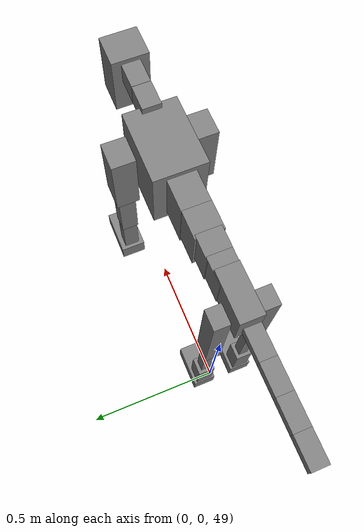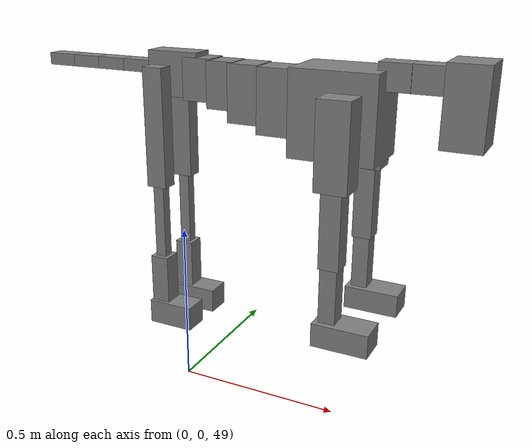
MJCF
<mujoco model="dog">

    <default>
        <joint armature="0.02" stiffness="1" damping="0.2" limited="true"/>
        <geom condim="3" friction="1 0.05 0.05" margin="0.01"/>
        <motor ctrllimited="true" ctrlrange="-1.0 1.0" forcelimited="true" gear="50"/>
    </default>

    <compiler inertiafromgeom="true" angle="radian"/>

    <option timestep="0.016" iterations="50" tolerance="1e-10" solver="Newton" jacobian="dense" cone="pyramidal"/>

    <size nconmax="20000" njmax="60000" nstack="5000000"/>
    <visual>
        <map force="0.1" zfar="30"/>
        <rgba haze="0.15 0.25 0.35 1"/>
        <quality shadowsize="2048"/>
        <global offwidth="800" offheight="800"/>
    </visual>

    <asset>
        <texture type="skybox" builtin="gradient" rgb1="0.3 0.5 0.7" rgb2="0 0 0" width="512" height="512"/>
        <texture name="texplane" type="2d" builtin="checker" rgb1=".2 .3 .4" rgb2=".1 0.15 0.2" width="512" height="512"
                 mark="cross" markrgb=".8 .8 .8"/>
        <texture name="texgeom" type="cube" builtin="flat" mark="cross" width="127" height="1278" rgb1="0.8 0.6 0.4"
                 rgb2="0.8 0.6 0.4" markrgb="1 1 1" random="0.01"/>

        <material name="matplane" reflectance="0.3" texture="texplane" texrepeat="1 1" texuniform="true"/>
        <material name="matgeom" texture="texgeom" texuniform="true" rgba="0.8 0.6 .4 1"/>
    </asset>

    <worldbody>
        <geom name="floor" pos="0 0 0" size="0 0 .25" type="plane" material="matplane" condim="3"/>

        <light directional="false" diffuse=".2 .2 .2" specular="0 0 0" pos="0 0 5" dir="0 0 -1" castshadow="false"/>
        <light mode="targetbodycom" target="torso" directional="false" diffuse=".8 .8 .8" specular="0.3 0.3 0.3"
               pos="0 0 4.0" dir="0 0 -1"/>

        <body name="root" pos="0 0 50">
            <freejoint name="root_1"/>
            <geom type="box" pos="0 0 -0.02" size="0.0774  0.0358  0.063" density="2030"/>

            <body name="spine1" pos="0.054 0 0">
                <joint name="spine1_y" axis="0 1 0" range="0 0.7" limited="true"/>
                <geom type="box" pos="0.02375 0 -0.03" size="0.04375  0.0375  0.05985" density="2030"/>

                <body name="spine2" pos="0.0612 0 0">
                    <joint name="spine2_y" axis="0 1 0" range="-0.15 0.15" limited="true"/>
                    <geom type="box" pos="0.03555  0  -0.04" size="0.04055  0.039  0.06615" density="2030"/>

                    <body name="spine3" pos="0.0730 0 0">
                        <joint name="spine3_y" axis="0 1 0" range="-0.15 0.15" limited="true"/>
                        <geom type="box" pos="0.03555  0  -0.057" size="0.04555  0.0445  0.081" density="2030"/>

                        <body name="spine4" pos="0.0780 0 0">
                            <joint name="spine4_y" axis="0 1 0" range="-0.15 0.15" limited="true"/>
                            <geom type="box" pos="0.05265  0  -0.07" size="0.05265  0.045  0.09135" density="2030"/>

                            <body name="torso" pos="0.1082 0 0">
                                <joint name="torso_y" axis="0 1 0" range="-0.15 0.15" limited="true"/>
                                <geom type="box" pos="0.11925  0  -0.085" size="0.11925  0.085  0.11745"
                                      density="2030"/>

                                <body name="neck1" pos="0.2160  0   0.0180">
                                    <joint name="neck1_y" axis="0 1 0" range="-1.2  -1" limited="true"/>
                                    <geom type="box" pos="0.0423  0  0" size="0.0423  0.03  0.036" density="2325"/>

                                    <body name="neck2" pos="0.0853  0  0">
                                        <joint name="neck2_y" axis="0 1 0" range="0.1  0" limited="true"/>
                                        <geom type="box" pos="0.0423  0  0" size="0.0423  0.03  0.036" density="2325"/>

                                        <body name="head" pos="0.0853  0  0">
                                            <joint name="head_y" axis="0 1 0" range="-0.3  -0.2" limited="true"/>
                                            <geom type="box" pos="0.0531  0  -0.055" size="0.0531  0.06  0.1044"
                                                  density="4030"/>

                                        </body>
                                    </body>
                                </body>

                                <body name="front_shoulder" pos="0.156  0   -0.0480">
                                    <joint name="front_shoulder_y" axis="0 1 0" range="-1 1.5" limited="true"/>
                                    <geom type="box" pos="0 0.13 -0.0910" size="0.0450  0.0385  0.1177" density="1158"/>
                                    <geom type="box" pos="0 -0.13 -0.0910" size="0.0450  0.0385  0.1177"
                                          density="1158"/>

                                    <body name="front_elbow" pos="0  0  -0.1820">
                                        <joint name="front_elbow_y" axis="0 1 0" range="-2 0" limited="true"/>
                                        <geom type="box" pos="0 0.13 -0.1173" size="0.0283  0.0289  0.1173"
                                              density="1081"/>
                                        <geom type="box" pos="0 -0.13 -0.1173" size="0.0283  0.0289  0.1173"
                                              density="1081"/>

                                        <body name="front_wrist" pos="0  0  -0.2346">
                                            <joint name="front_wrist_y" axis="0 1 0" range="-0.2 0" limited="true"/>
                                            <geom type="box" pos="0 0.13 -0.0844" size="0.0237  0.0263  0.0976"
                                                  density="1664"/>
                                            <geom type="box" pos="0 -0.13 -0.0844" size="0.0237  0.0263  0.0976"
                                                  density="1664"/>

                                            <body name="front_finger_end" pos="0  0  -0.1688">
                                                <joint name="front_finger_y" axis="0 1 0" range="-0.4 1"
                                                       limited="true"/>
                                                <geom type="box" pos="0.0433  0.13  -0.0183"
                                                      size="0.0794  0.0433  0.0333" density="1515"/>
                                                <geom type="box" pos="0.0433  -0.13  -0.0183"
                                                      size="0.0794  0.0433  0.0333" density="1515"/>

                                            </body>

                                        </body>
                                    </body>
                                </body>

                            </body>
                        </body>
                    </body>
                </body>
            </body>

            <body name="back_hip" pos="-0.03 0 -0.018">
                <joint name="back_hip_y" axis="0 1 0" range="-1.5 0.3" limited="true"/>
                <geom type="box" pos="0 0.07 -0.1494" size="0.0305  0.0239  0.1722" density="1154"/>
                <geom type="box" pos="0 -0.07 -0.1494" size="0.0305  0.0239  0.1722" density="1154"/>

                <body name="back_knee" pos="0  0  -0.2988">
                    <joint name="back_knee_y" axis="0 1 0" range="0 2.8" limited="true"/>
                    <geom type="box" pos="0 0.07 -0.1261" size="0.0162  0.0159  0.1417" density="1227"/>
                    <geom type="box" pos="0 -0.07 -0.1261" size="0.0162  0.0159  0.1417" density="1227"/>

                    <body name="back_ankle" pos="0  0  -0.2522">
                        <joint name="back_ankle_y" axis="0 1 0" range="-2.2 0" limited="true"/>
                        <geom type="box" pos="0 0.07 -0.0743" size="0.0277  0.0277  0.0855" density="1284"/>
                        <geom type="box" pos="0 -0.07 -0.0743" size="0.0277  0.0277  0.0855" density="1284"/>

                        <body name="back_toe_end" pos="0  0  -0.1485">
                            <joint name="back_toe_y" axis="0 1 0" range="-0.4 1" limited="true"/>
                            <geom type="box" pos="0.0378  0.07  -0.0212" size="0.0693  0.0378  0.0362" density="1515"/>
                            <geom type="box" pos="0.0378  -0.07  -0.0212" size="0.0693  0.0378  0.0362" density="1515"/>

                        </body>
                    </body>
                </body>
            </body>

            <body name="tail1" pos="-0.074 0 -0.006">
                <joint name="tail1_y" axis="0 1 0" range="-0.2 0.2" limited="true"/>
                <geom type="box" pos="-0.0536  0  0" size="0.045  0.025  0.0175" density="1587"/>

                <body name="tail2" pos="-0.09 0 0">
                    <joint name="tail2_y" axis="0 1 0" range="-0.2 0.2" limited="true"/>
                    <geom type="box" pos="-0.0536  0  0" size="0.045  0.025  0.0175" density="1587"/>

                    <body name="tail3" pos="-0.09 0 0">
                        <joint name="tail3_y" axis="0 1 0" range="-0.2 0.2" limited="true"/>
                        <geom type="box" pos="-0.0536  0  0" size="0.045  0.025  0.0175" density="1587"/>

                        <body name="tail4" pos="-0.09 0 0">
                            <joint name="tail4_y" axis="0 1 0" range="-0.2 0.2" limited="true"/>
                            <geom type="box" pos="-0.0536  0  0" size="0.045  0.025  0.0175" density="1587"/>

                        </body>
                    </body>
                </body>
            </body>
        </body>
    </worldbody>

    <actuator>
        <motor joint="spine1_y" forcerange="-150 150     "/>
        <motor joint="spine2_y" forcerange="-150 150     "/>
        <motor joint="spine3_y" forcerange="-150 150     "/>
        <motor joint="spine4_y" forcerange="-150 150     "/>
        <motor joint="torso_y" forcerange="-150 150     "/>
        <motor joint="neck1_y" forcerange="-100 100       "/>
        <motor joint="neck2_y" forcerange="-100 100       "/>
        <motor joint="head_y" forcerange="-150 150       "/>
        <motor joint="front_shoulder_y" forcerange="-181.61 175.07"/>
        <motor joint="front_elbow_y" forcerange="-136.56 173.76"/>
        <motor joint="front_wrist_y" forcerange="-114.15 96.54"/>
        <motor joint="front_finger_y" forcerange="-99.17 91.95"/>
        <motor joint="back_hip_y" forcerange="-215.84 303.25"/>
        <motor joint="back_knee_y" forcerange="-207.61 224.16"/>
        <motor joint="back_angle_y" forcerange="-138.17 205.03"/>
        <motor joint="back_toe_y" forcerange="-119.81 102.44"/>
        <motor joint="tail1_y" forcerange="-50 50     "/>
        <motor joint="tail2_y" forcerange="-50 50     "/>
        <motor joint="tail3_y" forcerange="-50 50     "/>
        <motor joint="tail4_y" forcerange="-50 50     "/>
    </actuator>
</mujoco>
